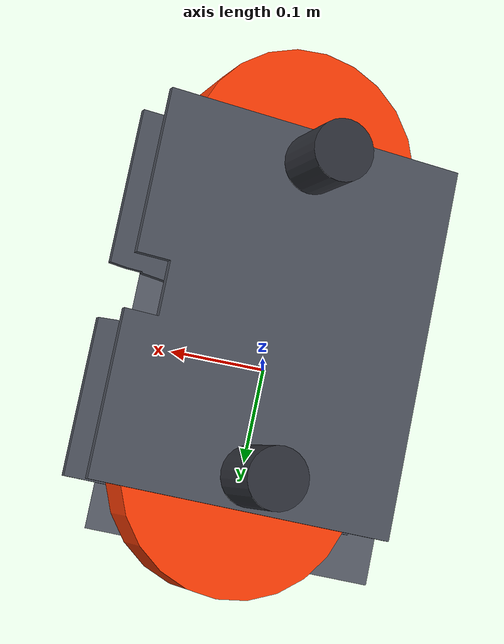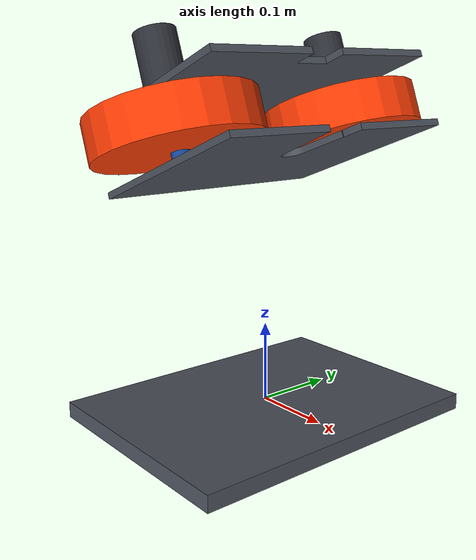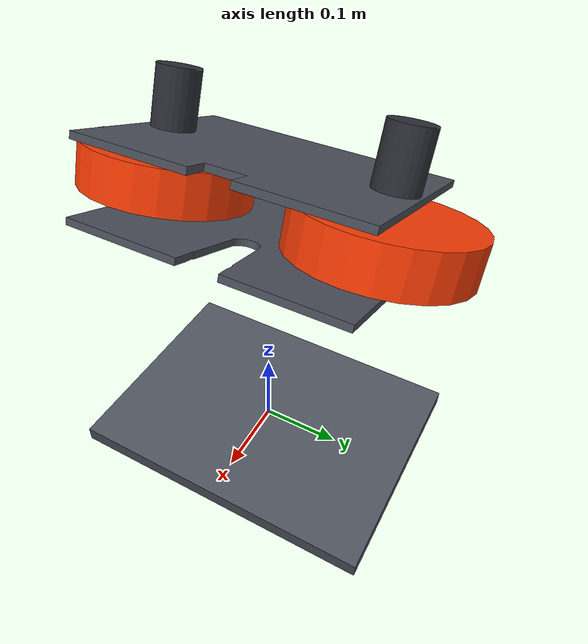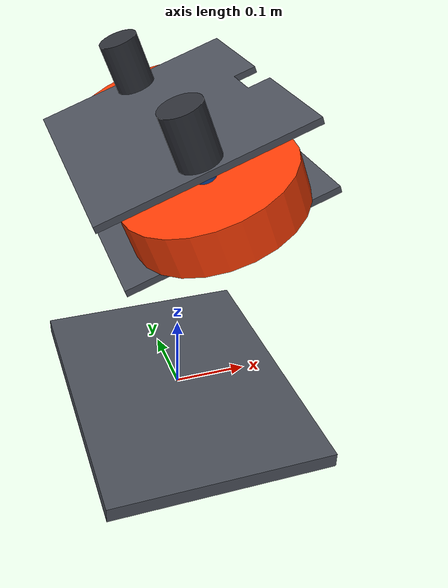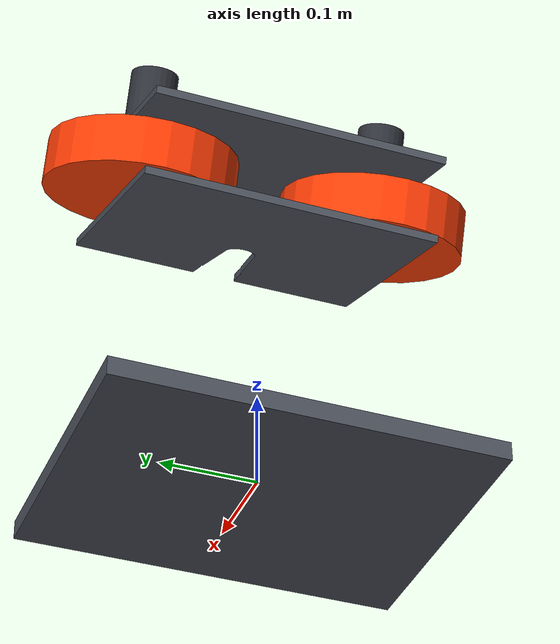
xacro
<?xml version="1.0" encoding="UTF-8"?>
<robot name="flywheel_launcher_bench" xmlns:xacro="http://www.ros.org/wiki/xacro">
  <xacro:include filename="components/materials.urdf.xacro"/>
  <xacro:include filename="components/base.urdf.xacro"/>
  <xacro:include filename="components/flywheel_launcher.urdf.xacro"/>
  <xacro:include filename="components/flywheel_launcher_module.urdf.xacro"/>

  <xacro:arg name="sim_mode" default="true"/>
  <xacro:arg name="controllers_config" default="config/flywheel_launcher_bench_controllers.yaml"/>
  <xacro:arg name="pitch_rad" default="0.349065850399"/>
  <xacro:arg name="nip_height" default="0.350"/>

  <!-- Kinematic root is the minimal fixed bench datum. It is deliberately not
       a robot chassis and has no collision in the ball path. -->
  <link name="launcher_bench_datum_link">
    <inertial>
      <mass value="1.0"/>
      <inertia ixx="0.001" ixy="0" ixz="0" iyy="0.001" iyz="0" izz="0.001"/>
    </inertial>
    <visual name="datum_vis">
      <origin xyz="0 0 -0.010" rpy="0 0 0"/>
      <geometry><box size="0.300 0.400 0.020"/></geometry>
      <material name="mount_gray"/>
    </visual>
  </link>
  <gazebo reference="launcher_bench_datum_link">
    <kinematic>true</kinematic>
    <gravity>false</gravity>
  </gazebo>

  <xacro:authoritative_flywheel_launcher_module
      parent="launcher_bench_datum_link"
      origin_xyz="0 0 $(arg nip_height)"
      pitch_rad="$(arg pitch_rad)"/>

  <ros2_control name="FlywheelLauncherBenchSystem" type="system">
    <hardware>
      <xacro:if value="$(arg sim_mode)">
        <plugin>gz_ros2_control/GazeboSimSystem</plugin>
      </xacro:if>
    </hardware>
    <joint name="flywheel_left_joint">
      <!-- 20 A provisional D5065 limit: Kt 0.031 N m/A => 0.62 N m. -->
      <command_interface name="effort"><param name="min">-0.62</param><param name="max">0.62</param></command_interface>
      <state_interface name="position"/><state_interface name="velocity"/>
    </joint>
    <joint name="flywheel_right_joint">
      <command_interface name="effort"><param name="min">-0.62</param><param name="max">0.62</param></command_interface>
      <state_interface name="position"/><state_interface name="velocity"/>
    </joint>
  </ros2_control>

  <xacro:if value="$(arg sim_mode)">
    <gazebo>
      <plugin filename="gz_ros2_control-system"
              name="gz_ros2_control::GazeboSimROS2ControlPlugin">
        <parameters>$(arg controllers_config)</parameters>
      </plugin>
    </gazebo>
  </xacro:if>
</robot>

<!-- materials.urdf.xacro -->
<robot xmlns:xacro="http://www.ros.org/wiki/xacro">
  <material name="plywood">
    <color rgba="0.68 0.50 0.30 1"/>
  </material>
  <material name="anthracite">
    <color rgba="0.18 0.19 0.22 1"/>
  </material>
  <material name="intake_orange">
    <color rgba="0.96 0.52 0.10 1"/>
  </material>
  <material name="safety_orange">
    <color rgba="1.0 0.24 0.02 1"/>
  </material>
  <material name="mount_gray">
    <color rgba="0.30 0.32 0.36 1"/>
  </material>
  <material name="basket_gray">
    <color rgba="0.42 0.45 0.48 0.65"/>
  </material>
  <material name="rubber_black">
    <color rgba="0.04 0.04 0.04 1"/>
  </material>
  <material name="sensor_black">
    <color rgba="0.02 0.03 0.04 1"/>
  </material>
  <material name="electronics_blue">
    <color rgba="0.08 0.28 0.62 1"/>
  </material>
  <material name="body_dark_grey">
    <color rgba="0.20 0.20 0.22 1"/>
  </material>
  <material name="ir_beam_red">
    <color rgba="1.0 0.05 0.02 0.35"/>
  </material>
</robot>

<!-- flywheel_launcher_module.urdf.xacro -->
<robot xmlns:xacro="http://www.ros.org/wiki/xacro">
  <xacro:macro name="provisional_candidate_flywheel"
      params="side parent y radius width rotating_mass spin_inertia transverse_inertia com_z max_vel effort">
    <link name="flywheel_${side}_link">
      <inertial>
        <origin xyz="0 0 ${com_z}" rpy="0 0 0"/>
        <mass value="${rotating_mass}"/>
        <inertia ixx="${transverse_inertia}" ixy="0" ixz="0"
                 iyy="${transverse_inertia}" iyz="0" izz="${spin_inertia}"/>
      </inertial>
      <collision name="flywheel_${side}_col">
        <geometry><cylinder radius="${radius}" length="${width}"/></geometry>
      </collision>
      <visual name="flywheel_${side}_vis">
        <geometry><cylinder radius="${radius}" length="${width}"/></geometry>
        <material name="safety_orange"/>
      </visual>
      <collision name="flywheel_${side}_shaft_col">
        <origin xyz="0 0 0.032" rpy="0 0 0"/>
        <geometry><cylinder radius="0.004" length="0.030"/></geometry>
      </collision>
      <visual name="flywheel_${side}_shaft_vis">
        <origin xyz="0 0 0.032" rpy="0 0 0"/>
        <geometry><cylinder radius="0.004" length="0.030"/></geometry>
        <material name="mount_gray"/>
      </visual>
      <!-- Analysis-only 7075-T6 hub envelope: 22 mm split collar, 10 mm
           through-wheel pilot, distal M8 washer/nut retention. -->
      <collision name="flywheel_${side}_hub_collar_col">
        <origin xyz="0 0 0.03175" rpy="0 0 0"/>
        <geometry><cylinder radius="0.011" length="0.0135"/></geometry>
      </collision>
      <visual name="flywheel_${side}_hub_collar_vis">
        <origin xyz="0 0 0.03175" rpy="0 0 0"/>
        <geometry><cylinder radius="0.011" length="0.0135"/></geometry>
        <material name="electronics_blue"/>
      </visual>
      <collision name="flywheel_${side}_hub_pilot_col">
        <origin xyz="0 0 0" rpy="0 0 0"/>
        <geometry><cylinder radius="0.005" length="0.050"/></geometry>
      </collision>
      <visual name="flywheel_${side}_hub_pilot_vis">
        <origin xyz="0 0 0" rpy="0 0 0"/>
        <geometry><cylinder radius="0.005" length="0.050"/></geometry>
        <material name="electronics_blue"/>
      </visual>
      <collision name="flywheel_${side}_retainer_col">
        <origin xyz="0 0 -0.030" rpy="0 0 0"/>
        <geometry><cylinder radius="0.011" length="0.008"/></geometry>
      </collision>
      <visual name="flywheel_${side}_retainer_vis">
        <origin xyz="0 0 -0.030" rpy="0 0 0"/>
        <geometry><cylinder radius="0.011" length="0.008"/></geometry>
        <material name="electronics_blue"/>
      </visual>
    </link>
    <joint name="flywheel_${side}_joint" type="continuous">
      <parent link="${parent}"/>
      <child link="flywheel_${side}_link"/>
      <origin xyz="0 ${y} 0" rpy="0 0 0"/>
      <axis xyz="0 0 1"/>
      <limit effort="${effort}" velocity="${max_vel}"/>
      <dynamics damping="0.002"/>
    </joint>
    <gazebo reference="flywheel_${side}_link">
      <mu1>2.0</mu1><mu2>2.0</mu2>
    </gazebo>
  </xacro:macro>

  <xacro:macro name="authoritative_flywheel_launcher_module"
      params="parent origin_xyz:='0 0 0' pitch_rad:='0.349065850399'
              wheel_mass:=0.90 hub_mass:=0.0267636462761
              spin_inertia:=0.00675116210829 transverse_inertia:=0.00358105785160
              rotating_com_z:=0.00027153263648 fixed_mass:=4.33478256461
              fixed_com_x:=-0.00231297294785 fixed_com_z:=0.0185061462201
              fixed_ixx:=0.0561713265628 fixed_iyy:=0.0294163341856
              fixed_izz:=0.0630372476838 fixed_ixz:=-0.000350443006278
              max_vel:=320.0 effort:=0.62">
    <xacro:property name="launcher_ball_d" value="0.066"/>
    <xacro:property name="launcher_wheel_radius" value="0.100"/>
    <xacro:property name="launcher_wheel_width" value="0.050"/>
    <xacro:property name="launcher_nip_gap" value="0.058"/>
    <xacro:property name="launcher_wheel_center_distance" value="0.258"/>
    <xacro:property name="launcher_wheel_y" value="0.129"/>
    <xacro:property name="launcher_plate_x" value="0.256"/>
    <xacro:property name="launcher_plate_y" value="0.314"/>
    <xacro:property name="launcher_plate_z" value="0.008"/>
    <xacro:property name="launcher_plate_offset_z" value="0.043"/>

    <joint name="flywheel_launcher_mount_joint" type="fixed">
      <parent link="${parent}"/>
      <child link="flywheel_launcher_frame_link"/>
      <origin xyz="${origin_xyz}" rpy="0 ${-float(pitch_rad)} 0"/>
    </joint>
    <gazebo reference="flywheel_launcher_mount_joint">
      <preserveFixedJoint>true</preserveFixedJoint>
    </gazebo>

    <link name="flywheel_launcher_frame_link">
      <inertial>
        <origin xyz="${fixed_com_x} 0 ${fixed_com_z}" rpy="0 0 0"/>
        <mass value="${fixed_mass}"/>
        <inertia ixx="${fixed_ixx}"
                 ixy="0" ixz="${fixed_ixz}"
                 iyy="${fixed_iyy}"
                 iyz="0"
                 izz="${fixed_izz}"/>
      </inertial>
      <collision name="flywheel_cradle_lower_plate_col">
        <origin xyz="0 0 ${-launcher_plate_offset_z}" rpy="0 0 0"/>
        <geometry><mesh filename="package://tennis_robot/meshes/flywheel_lower_panel_exit_clearance.stl" scale="0.001 0.001 0.001"/></geometry>
      </collision>
      <visual name="flywheel_cradle_lower_plate_vis">
        <origin xyz="0 0 ${-launcher_plate_offset_z}" rpy="0 0 0"/>
        <geometry><mesh filename="package://tennis_robot/meshes/flywheel_lower_panel_exit_clearance.stl" scale="0.001 0.001 0.001"/></geometry>
        <material name="mount_gray"/>
      </visual>
      <collision name="flywheel_cradle_upper_plate_col">
        <origin xyz="0 0 ${launcher_plate_offset_z}" rpy="0 0 0"/>
        <geometry><mesh filename="package://tennis_robot/meshes/flywheel_upper_panel_exit_clearance.stl" scale="0.001 0.001 0.001"/></geometry>
      </collision>
      <visual name="flywheel_cradle_upper_plate_vis">
        <origin xyz="0 0 ${launcher_plate_offset_z}" rpy="0 0 0"/>
        <geometry><mesh filename="package://tennis_robot/meshes/flywheel_upper_panel_exit_clearance.stl" scale="0.001 0.001 0.001"/></geometry>
        <material name="mount_gray"/>
      </visual>
      <xacro:property name="motor_body_z" value="${launcher_plate_offset_z + launcher_plate_z / 2.0 + 0.065 / 2.0}"/>
      <collision name="d5065_motor_left_col">
        <origin xyz="0 ${launcher_wheel_y} ${motor_body_z}" rpy="0 0 0"/>
        <geometry><cylinder radius="0.025" length="0.065"/></geometry>
      </collision>
      <visual name="d5065_motor_left_vis">
        <origin xyz="0 ${launcher_wheel_y} ${motor_body_z}" rpy="0 0 0"/>
        <geometry><cylinder radius="0.025" length="0.065"/></geometry>
        <material name="anthracite"/>
      </visual>
      <collision name="d5065_motor_right_col">
        <origin xyz="0 ${-launcher_wheel_y} ${motor_body_z}" rpy="0 0 0"/>
        <geometry><cylinder radius="0.025" length="0.065"/></geometry>
      </collision>
      <visual name="d5065_motor_right_vis">
        <origin xyz="0 ${-launcher_wheel_y} ${motor_body_z}" rpy="0 0 0"/>
        <geometry><cylinder radius="0.025" length="0.065"/></geometry>
        <material name="anthracite"/>
      </visual>
    </link>

    <xacro:provisional_candidate_flywheel side="left" parent="flywheel_launcher_frame_link"
        y="${launcher_wheel_y}" radius="${launcher_wheel_radius}"
        width="${launcher_wheel_width}" rotating_mass="${wheel_mass + hub_mass}"
        spin_inertia="${spin_inertia}" transverse_inertia="${transverse_inertia}"
        com_z="${rotating_com_z}"
        max_vel="${max_vel}" effort="${effort}"/>
    <xacro:provisional_candidate_flywheel side="right" parent="flywheel_launcher_frame_link"
        y="${-launcher_wheel_y}" radius="${launcher_wheel_radius}"
        width="${launcher_wheel_width}" rotating_mass="${wheel_mass + hub_mass}"
        spin_inertia="${spin_inertia}" transverse_inertia="${transverse_inertia}"
        com_z="${rotating_com_z}"
        max_vel="${max_vel}" effort="${effort}"/>
  </xacro:macro>
</robot>
